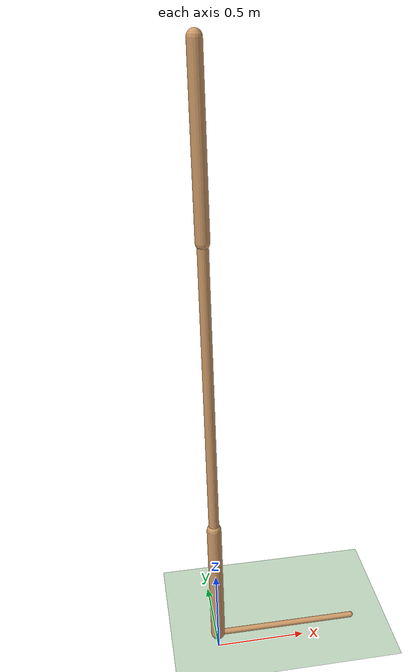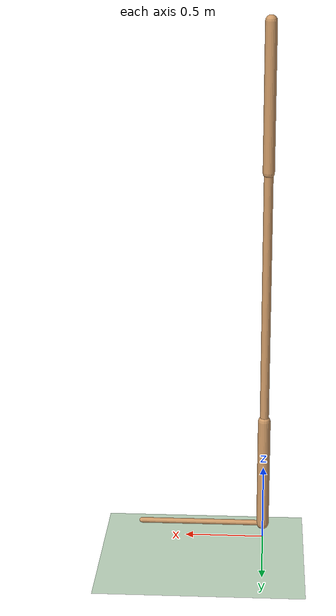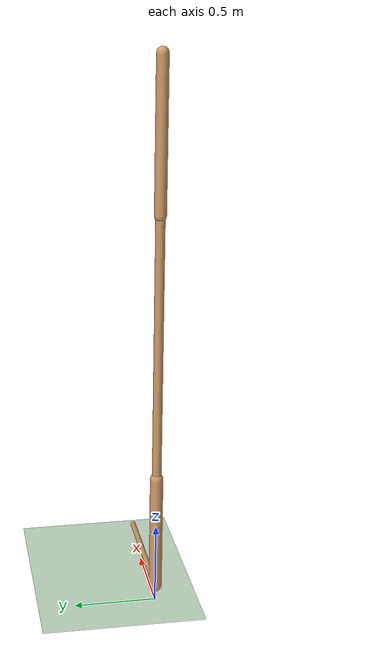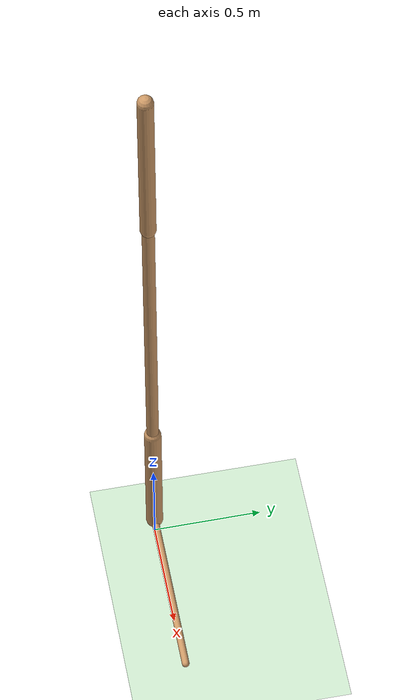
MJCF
<mujoco model="walker2d">
  <compiler angle="degree" inertiafromgeom="true" />
  <default>
    <joint armature="0.01" damping=".1" limited="true" />
    <geom conaffinity="0" condim="3" contype="1" density="1000" friction=".7 .1 .1" rgba="0.8 0.6 .4 1" />
  </default>
  <option integrator="RK4" timestep="0.002" />
  <worldbody>
    <light cutoff="100" diffuse="1 1 1" dir="-0 0 -1.3" directional="true" exponent="1" pos="0 0 1.3" specular=".1 .1 .1" />
    <geom conaffinity="1" condim="3" name="floor" pos="0 0 0" rgba="0.8 0.9 0.8 1" size="40 40 40" type="plane" material="MatPlane" />
    <body name="torso" pos="0 0 2.8711050510406495">
      <camera name="track" mode="trackcom" pos="0 -5 -1.25" xyaxes="1 0 0 0 0 1" />
      <joint armature="0" axis="1 0 0" damping="0" limited="false" name="rootx" pos="0 0 -1.25" stiffness="0" type="slide" />
      <joint armature="0" axis="0 0 1" damping="0" limited="false" name="rootz" pos="0 0 -1.25" ref="1.25" stiffness="0" type="slide" />
      <joint armature="0" axis="0 1 0" damping="0" limited="false" name="rooty" pos="0 0 0" stiffness="0" type="hinge" />
      <geom friction="0.9" name="torso_geom" size="0.03555772826075554 0.43943917751312256" type="capsule" />
      <body name="thigh" pos="0 0 -0.43943917751312256">
        <joint axis="0 -1 0" name="thigh_joint" pos="0 0 0" range="-150 0" type="hinge" />
        <site name="torso_thigh_site" pos="0 0 0" size="0.01" type="sphere" rgba="1 0 0 0.5" />
        <geom friction="0.9" pos="0 0 -0.8032309412956238" name="thigh_geom" size="0.028055546805262566 0.8032309412956238" type="capsule" />
        <body name="leg" pos="0 0 -1.9690638780593872">
          <joint axis="0 -1 0" name="leg_joint" pos="0 0 0.36260199546813965" range="-150 0" type="hinge" />
          <site name="thigh_leg_site" pos="0 0 0.25" size="0.01" type="sphere" rgba="1 0 0 0.5" />
          <geom friction="0.9" name="leg_geom" size="0.0394621267914772 0.36260199546813965" type="capsule" />
          <body name="foot" pos="0.7869704961776733 0 -0.4626019954681396">
            <joint axis="0 -1 0" name="foot_joint" pos="-0.7869704961776733 0 0.1" range="-45 45" type="hinge" />
            <site name="leg_foot_site" pos="-0.2 0 0.1" size="0.01" type="sphere" rgba="1 0 0 0.5" />
            <geom friction="0.9" pos="-0.39348524808883667 0 0.1" quat="0.70710678118654757 0 -0.70710678118654746 0" name="foot_geom" size="0.017142970114946365 0.39348524808883667" type="capsule" />
          </body>
        </body>
      </body>

      <body name="thigh_left" pos="0 0 -0.43943917751312256">
        <joint axis="0 -1 0" name="thigh_left_joint" pos="0 0 0" range="-150 0" type="hinge" />
        <site name="torso_thigh_left_site" pos="0 0 0" size="0.01" type="sphere" rgba="1 0 0 0.5" />
        <geom friction="0.9" name="thigh_left_geom" rgba=".7 .3 .6 1" size="0.028055546805262566 0.8032309412956238" pos="0 0 -0.8032309412956238" type="capsule" />
        <body name="leg_left" pos="0 0 -1.9690638780593872">
          <joint axis="0 -1 0" name="leg_left_joint" pos="0 0 0.36260199546813965" range="-150 0" type="hinge" />
          <site name="thigh_leg_left_site" pos="0 0 0.25" size="0.01" type="sphere" rgba="1 0 0 0.5" />
          <geom friction="0.9" name="leg_left_geom" rgba=".7 .3 .6 1" size="0.0394621267914772 0.36260199546813965" type="capsule" />
          <body name="foot_left" pos="0.7869704961776733 0 -0.4626019954681396">
            <joint axis="0 -1 0" name="foot_left_joint" pos="-0.7869704961776733 0 0.1" range="-45 45" type="hinge" />
            <site name="leg_foot_left_site" pos="-0.2 0 0.1" size="0.01" type="sphere" rgba="1 0 0 0.5" />
            <geom friction="1.9" name="foot_left_geom" rgba=".7 .3 .6 1" size="0.017142970114946365 0.39348524808883667" pos="-0.39348524808883667 0 0.1" type="capsule" quat="0.70710678118654757 0 -0.70710678118654746 0" />
          </body>
        </body>
      </body>
    </body>
  </worldbody>
  <actuator>

    <motor ctrllimited="true" ctrlrange="-1.0 1.0" gear="112.39717038446962" joint="thigh_joint" />
    <motor ctrllimited="true" ctrlrange="-1.0 1.0" gear="141.16634609009023" joint="leg_joint" />
    <motor ctrllimited="true" ctrlrange="-1.0 1.0" gear="32.1216681038223" joint="foot_joint" />
    <motor ctrllimited="true" ctrlrange="-1.0 1.0" gear="112.39717038446962" joint="thigh_left_joint" />
    <motor ctrllimited="true" ctrlrange="-1.0 1.0" gear="141.16634609009023" joint="leg_left_joint" />
    <motor ctrllimited="true" ctrlrange="-1.0 1.0" gear="32.1216681038223" joint="foot_left_joint" />

  </actuator>
    <asset>
        <texture type="skybox" builtin="gradient" rgb1=".4 .5 .6" rgb2="0 0 0" width="100" height="100" />
        <texture builtin="flat" height="1278" mark="cross" markrgb="1 1 1" name="texgeom" random="0.01" rgb1="0.8 0.6 0.4" rgb2="0.8 0.6 0.4" type="cube" width="127" />
        <texture builtin="checker" height="100" name="texplane" rgb1="0 0 0" rgb2="0.8 0.8 0.8" type="2d" width="100" />
        <material name="MatPlane" reflectance="0.5" shininess="1" specular="1" texrepeat="60 60" texture="texplane" />
        <material name="geom" texture="texgeom" texuniform="true" />
    </asset>

  <sensor>
    <force site="torso_thigh_site" name="torso_thigh_sensor" />
    <force site="thigh_leg_site" name="thigh_leg_sensor" />
    <force site="leg_foot_site" name="leg_foot_sensor" />
    <force site="torso_thigh_left_site" name="torso_thigh_left_sensor" />
    <force site="thigh_leg_left_site" name="thigh_leg_left_sensor" />
    <force site="leg_foot_left_site" name="leg_foot_left_sensor" />
  </sensor>
</mujoco>
